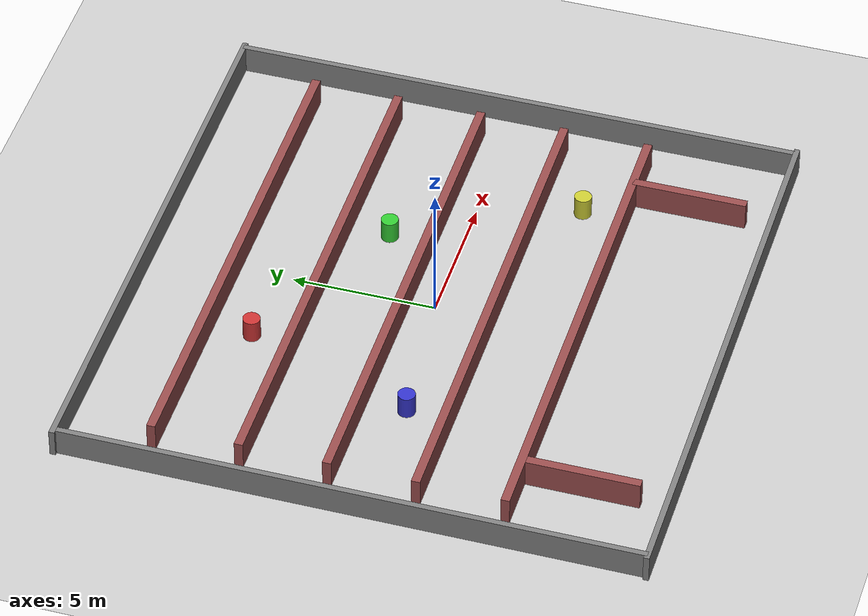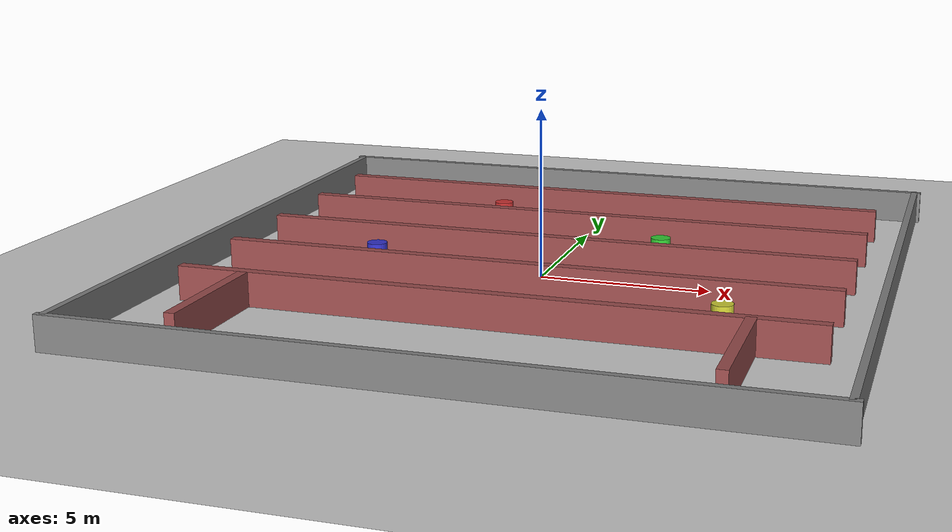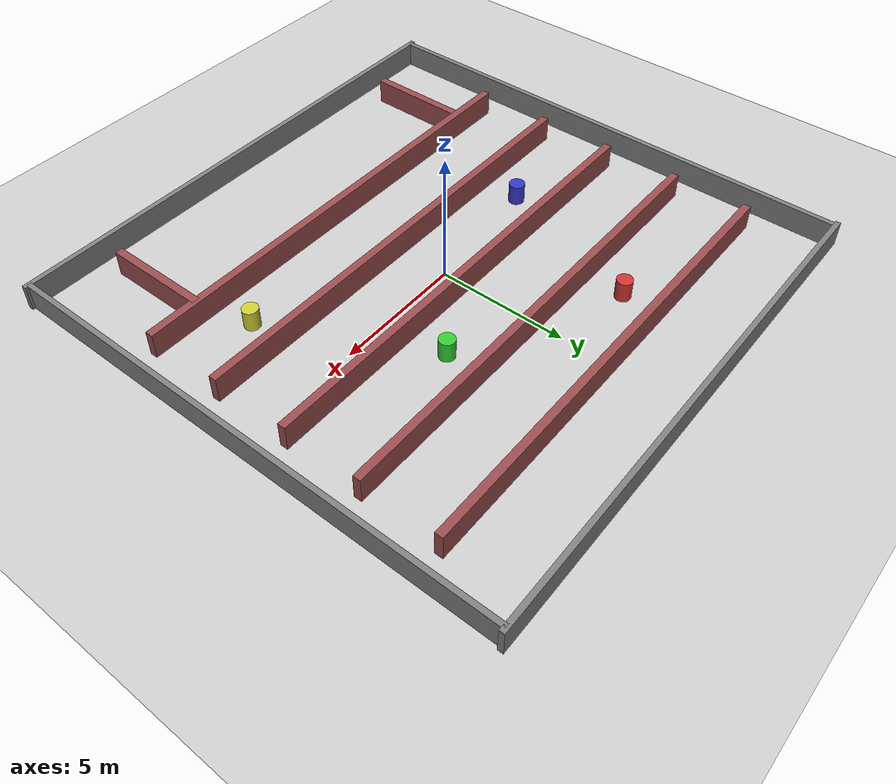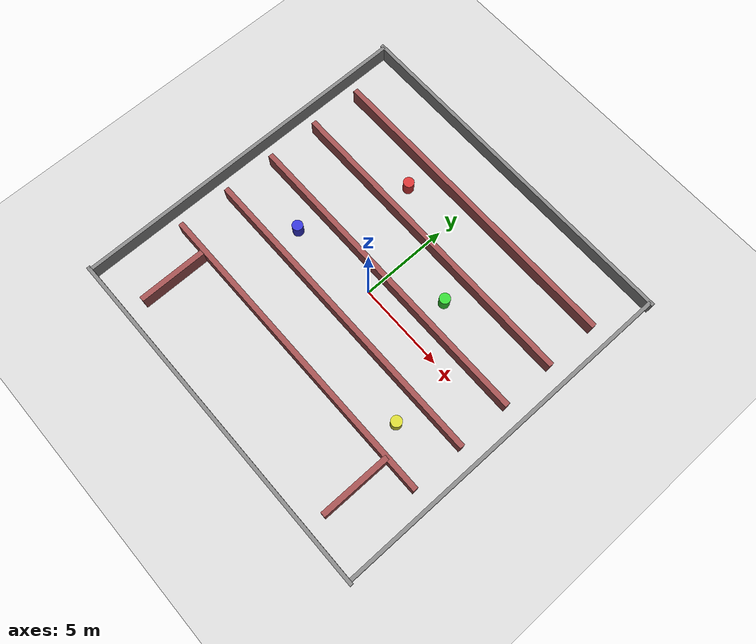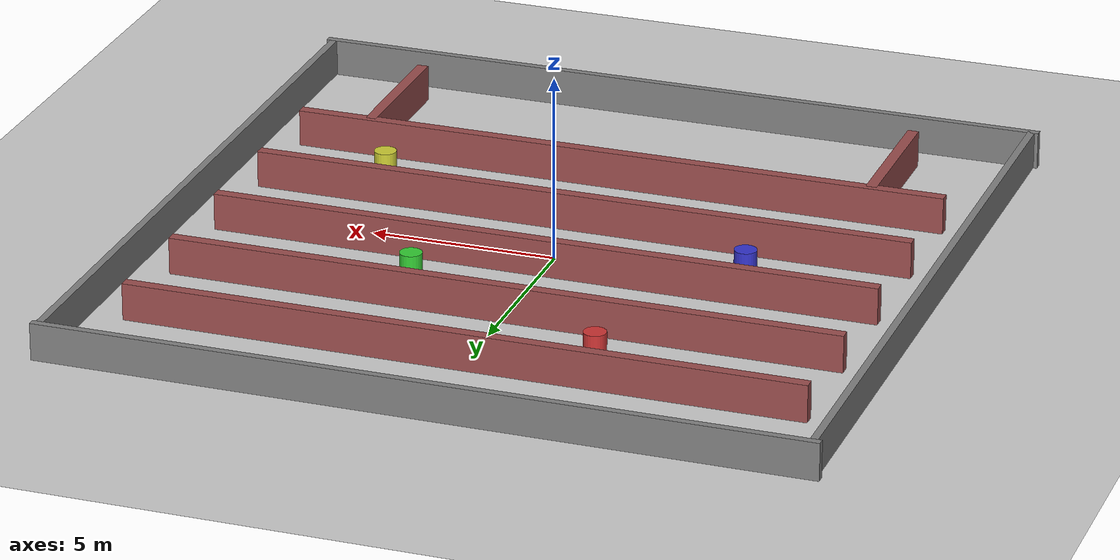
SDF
<?xml version="1.0" ?>
<sdf version="1.8">
  <world name="corridor_world">
    <!-- Physics settings for Gazebo Harmonic -->
    <physics name="4ms" type="ignored">
      <max_step_size>0.004</max_step_size>
      <real_time_factor>1.0</real_time_factor>
      <real_time_update_rate>250</real_time_update_rate>
    </physics>
    <plugin filename="gz-sim-physics-system" name="gz::sim::systems::Physics"/>
    <plugin filename="gz-sim-sensors-system" name="gz::sim::systems::Sensors">
      <render_engine>ogre2</render_engine>
    </plugin>
    <plugin filename="gz-sim-scene-broadcaster-system" name="gz::sim::systems::SceneBroadcaster"/>
    <plugin filename="gz-sim-user-commands-system" name="gz::sim::systems::UserCommands"/>

    <!-- Light -->
    <light type="directional" name="sun">
      <cast_shadows>true</cast_shadows>
      <pose>0 0 10 0 0 0</pose>
      <diffuse>0.8 0.8 0.8 1</diffuse>
      <specular>0.2 0.2 0.2 1</specular>
      <attenuation>
        <range>1000</range>
        <constant>0.9</constant>
        <linear>0.01</linear>
        <quadratic>0.001</quadratic>
      </attenuation>
      <direction>-0.5 0.1 -0.9</direction>
    </light>

    <!-- Ground Plane -->
    <model name="ground_plane">
      <static>true</static>
      <link name="link">
        <collision name="collision">
          <geometry>
            <plane>
              <normal>0 0 1</normal>
              <size>100 100</size>
            </plane>
          </geometry>
        </collision>
        <visual name="visual">
          <geometry>
            <plane>
              <normal>0 0 1</normal>
              <size>100 100</size>
            </plane>
          </geometry>
          <material>
            <ambient>0.8 0.8 0.8 1</ambient>
            <diffuse>0.8 0.8 0.8 1</diffuse>
          </material>
        </visual>
      </link>
    </model>

    <!-- ==================== CORRIDOR LAYOUT ==================== -->

    <!-- Outer Walls -->
    <model name="wall_north">
      <static>true</static>
      <pose>0 10 0.5 0 0 0</pose>
      <link name="link">
        <collision name="collision">
          <geometry><box><size>20.4 0.2 1.0</size></box></geometry>
        </collision>
        <visual name="visual">
          <geometry><box><size>20.4 0.2 1.0</size></box></geometry>
          <material><ambient>0.5 0.5 0.5 1</ambient><diffuse>0.5 0.5 0.5 1</diffuse></material>
        </visual>
      </link>
    </model>

    <model name="wall_south">
      <static>true</static>
      <pose>0 -10 0.5 0 0 0</pose>
      <link name="link">
        <collision name="collision">
          <geometry><box><size>20.4 0.2 1.0</size></box></geometry>
        </collision>
        <visual name="visual">
          <geometry><box><size>20.4 0.2 1.0</size></box></geometry>
          <material><ambient>0.5 0.5 0.5 1</ambient><diffuse>0.5 0.5 0.5 1</diffuse></material>
        </visual>
      </link>
    </model>

    <model name="wall_east">
      <static>true</static>
      <pose>10 0 0.5 0 0 0</pose>
      <link name="link">
        <collision name="collision">
          <geometry><box><size>0.2 20.0 1.0</size></box></geometry>
        </collision>
        <visual name="visual">
          <geometry><box><size>0.2 20.0 1.0</size></box></geometry>
          <material><ambient>0.5 0.5 0.5 1</ambient><diffuse>0.5 0.5 0.5 1</diffuse></material>
        </visual>
      </link>
    </model>

    <model name="wall_west">
      <static>true</static>
      <pose>-10 0 0.5 0 0 0</pose>
      <link name="link">
        <collision name="collision">
          <geometry><box><size>0.2 20.0 1.0</size></box></geometry>
        </collision>
        <visual name="visual">
          <geometry><box><size>0.2 20.0 1.0</size></box></geometry>
          <material><ambient>0.5 0.5 0.5 1</ambient><diffuse>0.5 0.5 0.5 1</diffuse></material>
        </visual>
      </link>
    </model>

    <!-- Horizontal Corridor Walls (creating narrow passages) -->
    <!-- Corridor 1: Top area -->
    <model name="corridor_h1">
      <static>true</static>
      <pose>0 7 0.5 0 0 0</pose>
      <link name="link">
        <collision name="collision">
          <geometry><box><size>18.0 0.3 1.0</size></box></geometry>
        </collision>
        <visual name="visual">
          <geometry><box><size>18.0 0.3 1.0</size></box></geometry>
          <material><ambient>0.6 0.3 0.3 1</ambient><diffuse>0.6 0.3 0.3 1</diffuse></material>
        </visual>
      </link>
    </model>

    <!-- Corridor 2 -->
    <model name="corridor_h2">
      <static>true</static>
      <pose>0 4 0.5 0 0 0</pose>
      <link name="link">
        <collision name="collision">
          <geometry><box><size>18.0 0.3 1.0</size></box></geometry>
        </collision>
        <visual name="visual">
          <geometry><box><size>18.0 0.3 1.0</size></box></geometry>
          <material><ambient>0.6 0.3 0.3 1</ambient><diffuse>0.6 0.3 0.3 1</diffuse></material>
        </visual>
      </link>
    </model>

    <!-- Corridor 3 -->
    <model name="corridor_h3">
      <static>true</static>
      <pose>0 1 0.5 0 0 0</pose>
      <link name="link">
        <collision name="collision">
          <geometry><box><size>18.0 0.3 1.0</size></box></geometry>
        </collision>
        <visual name="visual">
          <geometry><box><size>18.0 0.3 1.0</size></box></geometry>
          <material><ambient>0.6 0.3 0.3 1</ambient><diffuse>0.6 0.3 0.3 1</diffuse></material>
        </visual>
      </link>
    </model>

    <!-- Corridor 4 -->
    <model name="corridor_h4">
      <static>true</static>
      <pose>0 -2 0.5 0 0 0</pose>
      <link name="link">
        <collision name="collision">
          <geometry><box><size>18.0 0.3 1.0</size></box></geometry>
        </collision>
        <visual name="visual">
          <geometry><box><size>18.0 0.3 1.0</size></box></geometry>
          <material><ambient>0.6 0.3 0.3 1</ambient><diffuse>0.6 0.3 0.3 1</diffuse></material>
        </visual>
      </link>
    </model>

    <!-- Corridor 5 -->
    <model name="corridor_h5">
      <static>true</static>
      <pose>0 -5 0.5 0 0 0</pose>
      <link name="link">
        <collision name="collision">
          <geometry><box><size>18.0 0.3 1.0</size></box></geometry>
        </collision>
        <visual name="visual">
          <geometry><box><size>18.0 0.3 1.0</size></box></geometry>
          <material><ambient>0.6 0.3 0.3 1</ambient><diffuse>0.6 0.3 0.3 1</diffuse></material>
        </visual>
      </link>
    </model>

    <!-- Narrow passage obstacles (for collision avoidance testing) -->
    <!-- Obstacle in corridor 1 -->
    <model name="obstacle_c1">
      <static>true</static>
      <pose>-3 5.5 0.4 0 0 0</pose>
      <link name="link">
        <collision name="collision">
          <geometry><cylinder><radius>0.3</radius><length>0.8</length></cylinder></geometry>
        </collision>
        <visual name="visual">
          <geometry><cylinder><radius>0.3</radius><length>0.8</length></cylinder></geometry>
          <material><ambient>0.8 0.2 0.2 1</ambient><diffuse>0.8 0.2 0.2 1</diffuse></material>
        </visual>
      </link>
    </model>

    <!-- Obstacle in corridor 2 -->
    <model name="obstacle_c2">
      <static>true</static>
      <pose>3 2.5 0.4 0 0 0</pose>
      <link name="link">
        <collision name="collision">
          <geometry><cylinder><radius>0.3</radius><length>0.8</length></cylinder></geometry>
        </collision>
        <visual name="visual">
          <geometry><cylinder><radius>0.3</radius><length>0.8</length></cylinder></geometry>
          <material><ambient>0.2 0.8 0.2 1</ambient><diffuse>0.2 0.8 0.2 1</diffuse></material>
        </visual>
      </link>
    </model>

    <!-- Obstacle in corridor 3 -->
    <model name="obstacle_c3">
      <static>true</static>
      <pose>-5 -0.5 0.4 0 0 0</pose>
      <link name="link">
        <collision name="collision">
          <geometry><cylinder><radius>0.3</radius><length>0.8</length></cylinder></geometry>
        </collision>
        <visual name="visual">
          <geometry><cylinder><radius>0.3</radius><length>0.8</length></cylinder></geometry>
          <material><ambient>0.2 0.2 0.8 1</ambient><diffuse>0.2 0.2 0.8 1</diffuse></material>
        </visual>
      </link>
    </model>

    <!-- Obstacle in corridor 4 -->
    <model name="obstacle_c4">
      <static>true</static>
      <pose>6 -3.5 0.4 0 0 0</pose>
      <link name="link">
        <collision name="collision">
          <geometry><cylinder><radius>0.3</radius><length>0.8</length></cylinder></geometry>
        </collision>
        <visual name="visual">
          <geometry><cylinder><radius>0.3</radius><length>0.8</length></cylinder></geometry>
          <material><ambient>0.8 0.8 0.2 1</ambient><diffuse>0.8 0.8 0.2 1</diffuse></material>
        </visual>
      </link>
    </model>

    <!-- Additional narrow passage -->
    <model name="narrow_v1">
      <static>true</static>
      <pose>-7 -7 0.5 0 0 0</pose>
      <link name="link">
        <collision name="collision">
          <geometry><box><size>0.3 4.0 1.0</size></box></geometry>
        </collision>
        <visual name="visual">
          <geometry><box><size>0.3 4.0 1.0</size></box></geometry>
          <material><ambient>0.6 0.3 0.3 1</ambient><diffuse>0.6 0.3 0.3 1</diffuse></material>
        </visual>
      </link>
    </model>

    <model name="narrow_v2">
      <static>true</static>
      <pose>7 -7 0.5 0 0 0</pose>
      <link name="link">
        <collision name="collision">
          <geometry><box><size>0.3 4.0 1.0</size></box></geometry>
        </collision>
        <visual name="visual">
          <geometry><box><size>0.3 4.0 1.0</size></box></geometry>
          <material><ambient>0.6 0.3 0.3 1</ambient><diffuse>0.6 0.3 0.3 1</diffuse></material>
        </visual>
      </link>
    </model>

  </world>
</sdf>
